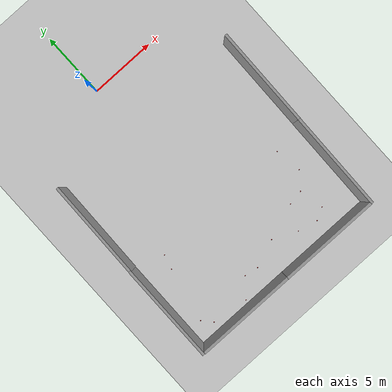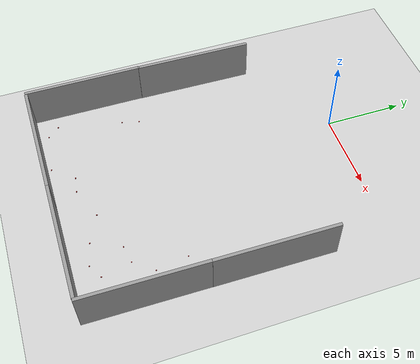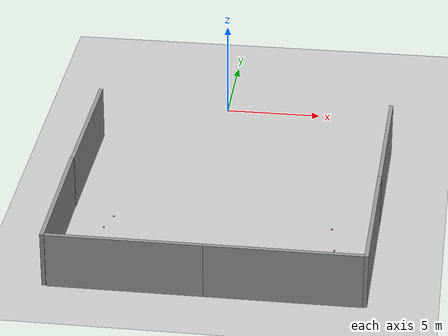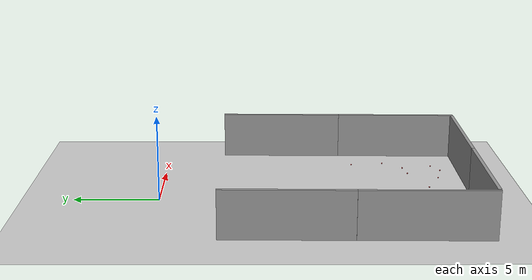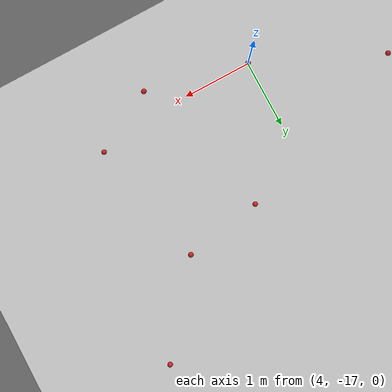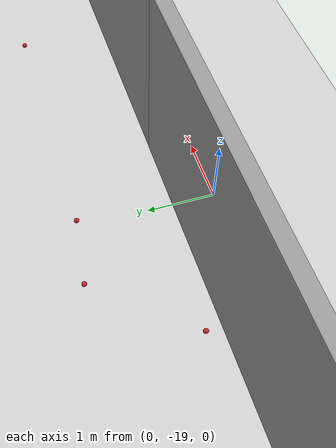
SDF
<sdf version="1.7">
 <world name="default">
  <light name="sun" type="directional">
   <pose>0 0 10 0 -0 0</pose>
   <diffuse>0.8 0.8 0.8 1</diffuse>
   <specular>0.2 0.2 0.2 1</specular>
   <attenuation>
    <range>1000</range>
    <constant>0.9</constant>
    <linear>0.01</linear>
    <quadratic>0.001</quadratic>
   </attenuation>
   <direction>-0.5 0.1 -0.9</direction>
   <spot><inner_angle>0</inner_angle><outer_angle>0</outer_angle><falloff>0</falloff></spot>
  </light>
  <model name="ground_plane">
   <static>1</static>
   <link name="link">
    <collision name="collision">
     <geometry><plane><normal>0 0 1</normal><size>100 100</size></plane></geometry>
     <surface>
      <contact><collide_bitmask>65535</collide_bitmask></contact>
      <friction><ode><mu>100</mu><mu2>50</mu2></ode></friction>
     </surface>
    </collision>
    <visual name="visual">
     <cast_shadows>0</cast_shadows>
     <geometry><plane><normal>0 0 1</normal><size>100 100</size></plane></geometry>
     <material>
      <script><uri>file://media/materials/scripts/gazebo.material</uri><name>Gazebo/Grey</name></script>
     </material>
    </visual>
   </link>
  </model>
  <gravity>0 0 -9.8</gravity>
  <magnetic_field>6e-06 2.3e-05 -4.2e-05</magnetic_field>
  <atmosphere type="adiabatic"/>
  <physics type="ode">
   <max_step_size>0.001</max_step_size>
   <real_time_factor>1</real_time_factor>
   <real_time_update_rate>1000</real_time_update_rate>
  </physics>
  <scene><ambient>0.4 0.4 0.4 1</ambient><background>0.7 0.7 0.7 1</background><shadows>1</shadows></scene>
  <spherical_coordinates>
   <surface_model>EARTH_WGS84</surface_model>
   <latitude_deg>0</latitude_deg>
   <longitude_deg>0</longitude_deg>
   <elevation>0</elevation>
   <heading_deg>0</heading_deg>
  </spherical_coordinates>
  <model name="grey_wall">
   <static>1</static>
   <link name="link">
    <pose>0 0 1.4 0 -0 0</pose>
    <collision name="collision"><geometry><box><size>7.5 0.2 2.8</size></box></geometry></collision>
    <visual name="visual">
     <cast_shadows>0</cast_shadows>
     <geometry><box><size>7.5 0.2 2.8</size></box></geometry>
     <material>
      <script>
       <uri>model://grey_wall/materials/scripts</uri>
       <uri>model://grey_wall/materials/textures</uri>
       <name>vrc/grey_wall</name>
      </script>
     </material>
    </visual>
   </link>
   <pose>4.93162 -18.4751 0 0 -0 0</pose>
  </model>
  <model name="grey_wall_0">
   <static>1</static>
   <link name="link">
    <pose>0 0 1.4 0 -0 0</pose>
    <collision name="collision"><geometry><box><size>7.5 0.2 2.8</size></box></geometry></collision>
    <visual name="visual">
     <cast_shadows>0</cast_shadows>
     <geometry><box><size>7.5 0.2 2.8</size></box></geometry>
     <material>
      <script>
       <uri>model://grey_wall/materials/scripts</uri>
       <uri>model://grey_wall/materials/textures</uri>
       <name>vrc/grey_wall</name>
      </script>
     </material>
    </visual>
   </link>
   <pose>-2.56468 -18.4723 0 0 -0 0</pose>
  </model>
  <model name="grey_wall_1">
   <static>1</static>
   <link name="link">
    <pose>0 0 1.4 0 -0 0</pose>
    <collision name="collision"><geometry><box><size>7.5 0.2 2.8</size></box></geometry></collision>
    <visual name="visual">
     <cast_shadows>0</cast_shadows>
     <geometry><box><size>7.5 0.2 2.8</size></box></geometry>
     <material>
      <script>
       <uri>model://grey_wall/materials/scripts</uri>
       <uri>model://grey_wall/materials/textures</uri>
       <name>vrc/grey_wall</name>
      </script>
     </material>
    </visual>
   </link>
   <pose>-6.41829 -14.7891 0 0 0 -1.57507</pose>
  </model>
  <model name="grey_wall_1_clone">
   <static>1</static>
   <link name="link">
    <pose>0 0 1.4 0 -0 0</pose>
    <collision name="collision"><geometry><box><size>7.5 0.2 2.8</size></box></geometry></collision>
    <visual name="visual">
     <cast_shadows>0</cast_shadows>
     <geometry><box><size>7.5 0.2 2.8</size></box></geometry>
     <material>
      <script>
       <uri>model://grey_wall/materials/scripts</uri>
       <uri>model://grey_wall/materials/textures</uri>
       <name>vrc/grey_wall</name>
      </script>
     </material>
    </visual>
   </link>
   <pose>8.83301 -14.8013 0 0 0 -1.58657</pose>
  </model>
  <model name="grey_wall_1_clone_clone">
   <static>1</static>
   <link name="link">
    <pose>0 0 1.4 0 -0 0</pose>
    <collision name="collision"><geometry><box><size>7.5 0.2 2.8</size></box></geometry></collision>
    <visual name="visual">
     <cast_shadows>0</cast_shadows>
     <geometry><box><size>7.5 0.2 2.8</size></box></geometry>
     <material>
      <script>
       <uri>model://grey_wall/materials/scripts</uri>
       <uri>model://grey_wall/materials/textures</uri>
       <name>vrc/grey_wall</name>
      </script>
     </material>
    </visual>
   </link>
   <pose>8.95968 -7.30594 0 0 0 -1.58657</pose>
  </model>
  <model name="grey_wall_1_clone_clone_0">
   <static>1</static>
   <link name="link">
    <pose>0 0 1.4 0 -0 0</pose>
    <collision name="collision"><geometry><box><size>7.5 0.2 2.8</size></box></geometry></collision>
    <visual name="visual">
     <cast_shadows>0</cast_shadows>
     <geometry><box><size>7.5 0.2 2.8</size></box></geometry>
     <material>
      <script>
       <uri>model://grey_wall/materials/scripts</uri>
       <uri>model://grey_wall/materials/textures</uri>
       <name>vrc/grey_wall</name>
      </script>
     </material>
    </visual>
   </link>
   <pose>-6.32242 -7.3791 0 0 0 -1.58657</pose>
  </model>
  <model name="cricket_ball">
   <link name="link">
    <pose>0 0 0.0375 0 -0 0</pose>
    <inertial>
     <mass>0.1467</mass>
     <inertia>
      <ixx>8.25187e-05</ixx>
      <ixy>0</ixy>
      <ixz>0</ixz>
      <iyy>8.25187e-05</iyy>
      <iyz>0</iyz>
      <izz>8.25187e-05</izz>
     </inertia>
    </inertial>
    <collision name="collision">
     <geometry><sphere><radius>0.0375</radius></sphere></geometry>
     <surface>
      <contact>
       <poissons_ratio>0.347</poissons_ratio>
       <elastic_modulus>8.8e+09</elastic_modulus>
       <ode><kp>100000</kp><kd>100</kd><max_vel>100</max_vel><min_depth>0.001</min_depth></ode>
      </contact>
      <friction>
       <torsional>
        <coefficient>1</coefficient>
        <use_patch_radius>0</use_patch_radius>
        <surface_radius>0.01</surface_radius>
       </torsional>
      </friction>
     </surface>
    </collision>
    <visual name="visual">
     <geometry><sphere><radius>0.0375</radius></sphere></geometry>
     <material>
      <script><uri>file://media/materials/scripts/gazebo.material</uri><name>Gazebo/Red</name></script>
     </material>
    </visual>
    <velocity_decay><linear>0</linear><angular>0.005</angular></velocity_decay>
   </link>
   <pose>4.86863 -15.1936 -0.001014 0 -0 0</pose>
  </model>
  <model name="cricket_ball_clone">
   <link name="link">
    <pose>0 0 0.0375 0 -0 0</pose>
    <inertial>
     <mass>0.1467</mass>
     <inertia>
      <ixx>8.25187e-05</ixx>
      <ixy>0</ixy>
      <ixz>0</ixz>
      <iyy>8.25187e-05</iyy>
      <iyz>0</iyz>
      <izz>8.25187e-05</izz>
     </inertia>
    </inertial>
    <collision name="collision">
     <geometry><sphere><radius>0.0375</radius></sphere></geometry>
     <surface>
      <contact>
       <poissons_ratio>0.347</poissons_ratio>
       <elastic_modulus>8.8e+09</elastic_modulus>
       <ode><kp>100000</kp><kd>100</kd><max_vel>100</max_vel><min_depth>0.001</min_depth></ode>
      </contact>
      <friction>
       <torsional>
        <coefficient>1</coefficient>
        <use_patch_radius>0</use_patch_radius>
        <surface_radius>0.01</surface_radius>
       </torsional>
      </friction>
     </surface>
    </collision>
    <visual name="visual">
     <geometry><sphere><radius>0.0375</radius></sphere></geometry>
     <material>
      <script><uri>file://media/materials/scripts/gazebo.material</uri><name>Gazebo/Red</name></script>
     </material>
    </visual>
    <velocity_decay><linear>0</linear><angular>0.005</angular></velocity_decay>
   </link>
   <pose>-4.22129 -11.8817 -0.001014 0 -0 0</pose>
  </model>
  <model name="cricket_ball_clone_0">
   <link name="link">
    <pose>0 0 0.0375 0 -0 0</pose>
    <inertial>
     <mass>0.1467</mass>
     <inertia>
      <ixx>8.25187e-05</ixx>
      <ixy>0</ixy>
      <ixz>0</ixz>
      <iyy>8.25187e-05</iyy>
      <iyz>0</iyz>
      <izz>8.25187e-05</izz>
     </inertia>
    </inertial>
    <collision name="collision">
     <geometry><sphere><radius>0.0375</radius></sphere></geometry>
     <surface>
      <contact>
       <poissons_ratio>0.347</poissons_ratio>
       <elastic_modulus>8.8e+09</elastic_modulus>
       <ode><kp>100000</kp><kd>100</kd><max_vel>100</max_vel><min_depth>0.001</min_depth></ode>
      </contact>
      <friction>
       <torsional>
        <coefficient>1</coefficient>
        <use_patch_radius>0</use_patch_radius>
        <surface_radius>0.01</surface_radius>
       </torsional>
      </friction>
     </surface>
    </collision>
    <visual name="visual">
     <geometry><sphere><radius>0.0375</radius></sphere></geometry>
     <material>
      <script><uri>file://media/materials/scripts/gazebo.material</uri><name>Gazebo/Red</name></script>
     </material>
    </visual>
    <velocity_decay><linear>0</linear><angular>0.005</angular></velocity_decay>
   </link>
   <pose>-0.941686 -16.8344 -0.001014 0 -0 0</pose>
  </model>
  <model name="cricket_ball_clone_1">
   <link name="link">
    <pose>0 0 0.0375 0 -0 0</pose>
    <inertial>
     <mass>0.1467</mass>
     <inertia>
      <ixx>8.25187e-05</ixx>
      <ixy>0</ixy>
      <ixz>0</ixz>
      <iyy>8.25187e-05</iyy>
      <iyz>0</iyz>
      <izz>8.25187e-05</izz>
     </inertia>
    </inertial>
    <collision name="collision">
     <geometry><sphere><radius>0.0375</radius></sphere></geometry>
     <surface>
      <contact>
       <poissons_ratio>0.347</poissons_ratio>
       <elastic_modulus>8.8e+09</elastic_modulus>
       <ode><kp>100000</kp><kd>100</kd><max_vel>100</max_vel><min_depth>0.001</min_depth></ode>
      </contact>
      <friction>
       <torsional>
        <coefficient>1</coefficient>
        <use_patch_radius>0</use_patch_radius>
        <surface_radius>0.01</surface_radius>
       </torsional>
      </friction>
     </surface>
    </collision>
    <visual name="visual">
     <geometry><sphere><radius>0.0375</radius></sphere></geometry>
     <material>
      <script><uri>file://media/materials/scripts/gazebo.material</uri><name>Gazebo/Red</name></script>
     </material>
    </visual>
    <velocity_decay><linear>0</linear><angular>0.005</angular></velocity_decay>
   </link>
   <pose>0.102421 -16.9814 -0.001014 0 -0 0</pose>
  </model>
  <model name="cricket_ball_clone_2">
   <link name="link">
    <pose>0 0 0.0375 0 -0 0</pose>
    <inertial>
     <mass>0.1467</mass>
     <inertia>
      <ixx>8.25187e-05</ixx>
      <ixy>0</ixy>
      <ixz>0</ixz>
      <iyy>8.25187e-05</iyy>
      <iyz>0</iyz>
      <izz>8.25187e-05</izz>
     </inertia>
    </inertial>
    <collision name="collision">
     <geometry><sphere><radius>0.0375</radius></sphere></geometry>
     <surface>
      <contact>
       <poissons_ratio>0.347</poissons_ratio>
       <elastic_modulus>8.8e+09</elastic_modulus>
       <ode><kp>100000</kp><kd>100</kd><max_vel>100</max_vel><min_depth>0.001</min_depth></ode>
      </contact>
      <friction>
       <torsional>
        <coefficient>1</coefficient>
        <use_patch_radius>0</use_patch_radius>
        <surface_radius>0.01</surface_radius>
       </torsional>
      </friction>
     </surface>
    </collision>
    <visual name="visual">
     <geometry><sphere><radius>0.0375</radius></sphere></geometry>
     <material>
      <script><uri>file://media/materials/scripts/gazebo.material</uri><name>Gazebo/Red</name></script>
     </material>
    </visual>
    <velocity_decay><linear>0</linear><angular>0.005</angular></velocity_decay>
   </link>
   <pose>6.39057 -16.8491 -0.001014 0 -0 0</pose>
  </model>
  <model name="cricket_ball_clone_3">
   <link name="link">
    <pose>0 0 0.0375 0 -0 0</pose>
    <inertial>
     <mass>0.1467</mass>
     <inertia>
      <ixx>8.25187e-05</ixx>
      <ixy>0</ixy>
      <ixz>0</ixz>
      <iyy>8.25187e-05</iyy>
      <iyz>0</iyz>
      <izz>8.25187e-05</izz>
     </inertia>
    </inertial>
    <collision name="collision">
     <geometry><sphere><radius>0.0375</radius></sphere></geometry>
     <surface>
      <contact>
       <poissons_ratio>0.347</poissons_ratio>
       <elastic_modulus>8.8e+09</elastic_modulus>
       <ode><kp>100000</kp><kd>100</kd><max_vel>100</max_vel><min_depth>0.001</min_depth></ode>
      </contact>
      <friction>
       <torsional>
        <coefficient>1</coefficient>
        <use_patch_radius>0</use_patch_radius>
        <surface_radius>0.01</surface_radius>
       </torsional>
      </friction>
     </surface>
    </collision>
    <visual name="visual">
     <geometry><sphere><radius>0.0375</radius></sphere></geometry>
     <material>
      <script><uri>file://media/materials/scripts/gazebo.material</uri><name>Gazebo/Red</name></script>
     </material>
    </visual>
    <velocity_decay><linear>0</linear><angular>0.005</angular></velocity_decay>
   </link>
   <pose>6.67324 -11.7868 -0.001014 0 -0 0</pose>
  </model>
  <model name="cricket_ball_clone_4">
   <link name="link">
    <pose>0 0 0.0375 0 -0 0</pose>
    <inertial>
     <mass>0.1467</mass>
     <inertia>
      <ixx>8.25187e-05</ixx>
      <ixy>0</ixy>
      <ixz>0</ixz>
      <iyy>8.25187e-05</iyy>
      <iyz>0</iyz>
      <izz>8.25187e-05</izz>
     </inertia>
    </inertial>
    <collision name="collision">
     <geometry><sphere><radius>0.0375</radius></sphere></geometry>
     <surface>
      <contact>
       <poissons_ratio>0.347</poissons_ratio>
       <elastic_modulus>8.8e+09</elastic_modulus>
       <ode><kp>100000</kp><kd>100</kd><max_vel>100</max_vel><min_depth>0.001</min_depth></ode>
      </contact>
      <friction>
       <torsional>
        <coefficient>1</coefficient>
        <use_patch_radius>0</use_patch_radius>
        <surface_radius>0.01</surface_radius>
       </torsional>
      </friction>
     </surface>
    </collision>
    <visual name="visual">
     <geometry><sphere><radius>0.0375</radius></sphere></geometry>
     <material>
      <script><uri>file://media/materials/scripts/gazebo.material</uri><name>Gazebo/Red</name></script>
     </material>
    </visual>
    <velocity_decay><linear>0</linear><angular>0.005</angular></velocity_decay>
   </link>
   <pose>6.975 -13.7987 -0.001014 0 -0 0</pose>
  </model>
  <model name="cricket_ball_clone_5">
   <link name="link">
    <pose>0 0 0.0375 0 -0 0</pose>
    <inertial>
     <mass>0.1467</mass>
     <inertia>
      <ixx>8.25187e-05</ixx>
      <ixy>0</ixy>
      <ixz>0</ixz>
      <iyy>8.25187e-05</iyy>
      <iyz>0</iyz>
      <izz>8.25187e-05</izz>
     </inertia>
    </inertial>
    <collision name="collision">
     <geometry><sphere><radius>0.0375</radius></sphere></geometry>
     <surface>
      <contact>
       <poissons_ratio>0.347</poissons_ratio>
       <elastic_modulus>8.8e+09</elastic_modulus>
       <ode><kp>100000</kp><kd>100</kd><max_vel>100</max_vel><min_depth>0.001</min_depth></ode>
      </contact>
      <friction>
       <torsional>
        <coefficient>1</coefficient>
        <use_patch_radius>0</use_patch_radius>
        <surface_radius>0.01</surface_radius>
       </torsional>
      </friction>
     </surface>
    </collision>
    <visual name="visual">
     <geometry><sphere><radius>0.0375</radius></sphere></geometry>
     <material>
      <script><uri>file://media/materials/scripts/gazebo.material</uri><name>Gazebo/Red</name></script>
     </material>
    </visual>
    <velocity_decay><linear>0</linear><angular>0.005</angular></velocity_decay>
   </link>
   <pose>5.49165 -17.3445 -0.001014 0 -0 0</pose>
  </model>
  <model name="cricket_ball_clone_6">
   <link name="link">
    <pose>0 0 0.0375 0 -0 0</pose>
    <inertial>
     <mass>0.1467</mass>
     <inertia>
      <ixx>8.25187e-05</ixx>
      <ixy>0</ixy>
      <ixz>0</ixz>
      <iyy>8.25187e-05</iyy>
      <iyz>0</iyz>
      <izz>8.25187e-05</izz>
     </inertia>
    </inertial>
    <collision name="collision">
     <geometry><sphere><radius>0.0375</radius></sphere></geometry>
     <surface>
      <contact>
       <poissons_ratio>0.347</poissons_ratio>
       <elastic_modulus>8.8e+09</elastic_modulus>
       <ode><kp>100000</kp><kd>100</kd><max_vel>100</max_vel><min_depth>0.001</min_depth></ode>
      </contact>
      <friction>
       <torsional>
        <coefficient>1</coefficient>
        <use_patch_radius>0</use_patch_radius>
        <surface_radius>0.01</surface_radius>
       </torsional>
      </friction>
     </surface>
    </collision>
    <visual name="visual">
     <geometry><sphere><radius>0.0375</radius></sphere></geometry>
     <material>
      <script><uri>file://media/materials/scripts/gazebo.material</uri><name>Gazebo/Red</name></script>
     </material>
    </visual>
    <velocity_decay><linear>0</linear><angular>0.005</angular></velocity_decay>
   </link>
   <pose>-4.78807 -17.8046 -0.001014 0 -0 0</pose>
  </model>
  <model name="cricket_ball_clone_7">
   <link name="link">
    <pose>0 0 0.0375 0 -0 0</pose>
    <inertial>
     <mass>0.1467</mass>
     <inertia>
      <ixx>8.25187e-05</ixx>
      <ixy>0</ixy>
      <ixz>0</ixz>
      <iyy>8.25187e-05</iyy>
      <iyz>0</iyz>
      <izz>8.25187e-05</izz>
     </inertia>
    </inertial>
    <collision name="collision">
     <geometry><sphere><radius>0.0375</radius></sphere></geometry>
     <surface>
      <contact>
       <poissons_ratio>0.347</poissons_ratio>
       <elastic_modulus>8.8e+09</elastic_modulus>
       <ode><kp>100000</kp><kd>100</kd><max_vel>100</max_vel><min_depth>0.001</min_depth></ode>
      </contact>
      <friction>
       <torsional>
        <coefficient>1</coefficient>
        <use_patch_radius>0</use_patch_radius>
        <surface_radius>0.01</surface_radius>
       </torsional>
      </friction>
     </surface>
    </collision>
    <visual name="visual">
     <geometry><sphere><radius>0.0375</radius></sphere></geometry>
     <material>
      <script><uri>file://media/materials/scripts/gazebo.material</uri><name>Gazebo/Red</name></script>
     </material>
    </visual>
    <velocity_decay><linear>0</linear><angular>0.005</angular></velocity_decay>
   </link>
   <pose>-2.05687 -18.1442 -0.001014 0 -0 0</pose>
  </model>
  <model name="cricket_ball_clone_8">
   <link name="link">
    <pose>0 0 0.0375 0 -0 0</pose>
    <inertial>
     <mass>0.1467</mass>
     <inertia>
      <ixx>8.25187e-05</ixx>
      <ixy>0</ixy>
      <ixz>0</ixz>
      <iyy>8.25187e-05</iyy>
      <iyz>0</iyz>
      <izz>8.25187e-05</izz>
     </inertia>
    </inertial>
    <collision name="collision">
     <geometry><sphere><radius>0.0375</radius></sphere></geometry>
     <surface>
      <contact>
       <poissons_ratio>0.347</poissons_ratio>
       <elastic_modulus>8.8e+09</elastic_modulus>
       <ode><kp>100000</kp><kd>100</kd><max_vel>100</max_vel><min_depth>0.001</min_depth></ode>
      </contact>
      <friction>
       <torsional>
        <coefficient>1</coefficient>
        <use_patch_radius>0</use_patch_radius>
        <surface_radius>0.01</surface_radius>
       </torsional>
      </friction>
     </surface>
    </collision>
    <visual name="visual">
     <geometry><sphere><radius>0.0375</radius></sphere></geometry>
     <material>
      <script><uri>file://media/materials/scripts/gazebo.material</uri><name>Gazebo/Red</name></script>
     </material>
    </visual>
    <velocity_decay><linear>0</linear><angular>0.005</angular></velocity_decay>
   </link>
   <pose>-4.52834 -12.9775 -0.001014 0 -0 0</pose>
  </model>
  <model name="cricket_ball_clone_9">
   <link name="link">
    <pose>0 0 0.0375 0 -0 0</pose>
    <inertial>
     <mass>0.1467</mass>
     <inertia>
      <ixx>8.25187e-05</ixx>
      <ixy>0</ixy>
      <ixz>0</ixz>
      <iyy>8.25187e-05</iyy>
      <iyz>0</iyz>
      <izz>8.25187e-05</izz>
     </inertia>
    </inertial>
    <collision name="collision">
     <geometry><sphere><radius>0.0375</radius></sphere></geometry>
     <surface>
      <contact>
       <poissons_ratio>0.347</poissons_ratio>
       <elastic_modulus>8.8e+09</elastic_modulus>
       <ode><kp>100000</kp><kd>100</kd><max_vel>100</max_vel><min_depth>0.001</min_depth></ode>
      </contact>
      <friction>
       <torsional>
        <coefficient>1</coefficient>
        <use_patch_radius>0</use_patch_radius>
        <surface_radius>0.01</surface_radius>
       </torsional>
      </friction>
     </surface>
    </collision>
    <visual name="visual">
     <geometry><sphere><radius>0.0375</radius></sphere></geometry>
     <material>
      <script><uri>file://media/materials/scripts/gazebo.material</uri><name>Gazebo/Red</name></script>
     </material>
    </visual>
    <velocity_decay><linear>0</linear><angular>0.005</angular></velocity_decay>
   </link>
   <pose>-5.42543 -17.0775 -0.001014 0 -0 0</pose>
  </model>
  <model name="cricket_ball_clone_10">
   <link name="link">
    <pose>0 0 0.0375 0 -0 0</pose>
    <inertial>
     <mass>0.1467</mass>
     <inertia>
      <ixx>8.25187e-05</ixx>
      <ixy>0</ixy>
      <ixz>0</ixz>
      <iyy>8.25187e-05</iyy>
      <iyz>0</iyz>
      <izz>8.25187e-05</izz>
     </inertia>
    </inertial>
    <collision name="collision">
     <geometry><sphere><radius>0.0375</radius></sphere></geometry>
     <surface>
      <contact>
       <poissons_ratio>0.347</poissons_ratio>
       <elastic_modulus>8.8e+09</elastic_modulus>
       <ode><kp>100000</kp><kd>100</kd><max_vel>100</max_vel><min_depth>0.001</min_depth></ode>
      </contact>
      <friction>
       <torsional>
        <coefficient>1</coefficient>
        <use_patch_radius>0</use_patch_radius>
        <surface_radius>0.01</surface_radius>
       </torsional>
      </friction>
     </surface>
    </collision>
    <visual name="visual">
     <geometry><sphere><radius>0.0375</radius></sphere></geometry>
     <material>
      <script><uri>file://media/materials/scripts/gazebo.material</uri><name>Gazebo/Red</name></script>
     </material>
    </visual>
    <velocity_decay><linear>0</linear><angular>0.005</angular></velocity_decay>
   </link>
   <pose>2.18581 -16.1786 -0.001014 0 -0 0</pose>
  </model>
  <model name="cricket_ball_clone_11">
   <link name="link">
    <pose>0 0 0.0375 0 -0 0</pose>
    <inertial>
     <mass>0.1467</mass>
     <inertia>
      <ixx>8.25187e-05</ixx>
      <ixy>0</ixy>
      <ixz>0</ixz>
      <iyy>8.25187e-05</iyy>
      <iyz>0</iyz>
      <izz>8.25187e-05</izz>
     </inertia>
    </inertial>
    <collision name="collision">
     <geometry><sphere><radius>0.0375</radius></sphere></geometry>
     <surface>
      <contact>
       <poissons_ratio>0.347</poissons_ratio>
       <elastic_modulus>8.8e+09</elastic_modulus>
       <ode><kp>100000</kp><kd>100</kd><max_vel>100</max_vel><min_depth>0.001</min_depth></ode>
      </contact>
      <friction>
       <torsional>
        <coefficient>1</coefficient>
        <use_patch_radius>0</use_patch_radius>
        <surface_radius>0.01</surface_radius>
       </torsional>
      </friction>
     </surface>
    </collision>
    <visual name="visual">
     <geometry><sphere><radius>0.0375</radius></sphere></geometry>
     <material>
      <script><uri>file://media/materials/scripts/gazebo.material</uri><name>Gazebo/Red</name></script>
     </material>
    </visual>
    <velocity_decay><linear>0</linear><angular>0.005</angular></velocity_decay>
   </link>
   <pose>6 -15 -0.001014 0 -0 0</pose>
  </model>
  <model name="cricket_ball_clone_12">
   <link name="link">
    <pose>0 0 0.0375 0 -0 0</pose>
    <inertial>
     <mass>0.1467</mass>
     <inertia>
      <ixx>8.25187e-05</ixx>
      <ixy>0</ixy>
      <ixz>0</ixz>
      <iyy>8.25187e-05</iyy>
      <iyz>0</iyz>
      <izz>8.25187e-05</izz>
     </inertia>
    </inertial>
    <collision name="collision">
     <geometry><sphere><radius>0.0375</radius></sphere></geometry>
     <surface>
      <contact>
       <poissons_ratio>0.347</poissons_ratio>
       <elastic_modulus>8.8e+09</elastic_modulus>
       <ode><kp>100000</kp><kd>100</kd><max_vel>100</max_vel><min_depth>0.001</min_depth></ode>
      </contact>
      <friction>
       <torsional>
        <coefficient>1</coefficient>
        <use_patch_radius>0</use_patch_radius>
        <surface_radius>0.01</surface_radius>
       </torsional>
      </friction>
     </surface>
    </collision>
    <visual name="visual">
     <geometry><sphere><radius>0.0375</radius></sphere></geometry>
     <material>
      <script><uri>file://media/materials/scripts/gazebo.material</uri><name>Gazebo/Red</name></script>
     </material>
    </visual>
    <velocity_decay><linear>0</linear><angular>0.005</angular></velocity_decay>
   </link>
   <pose>4 -17 -0.001014 0 -0 0</pose>
  </model>
 </world>
</sdf>
